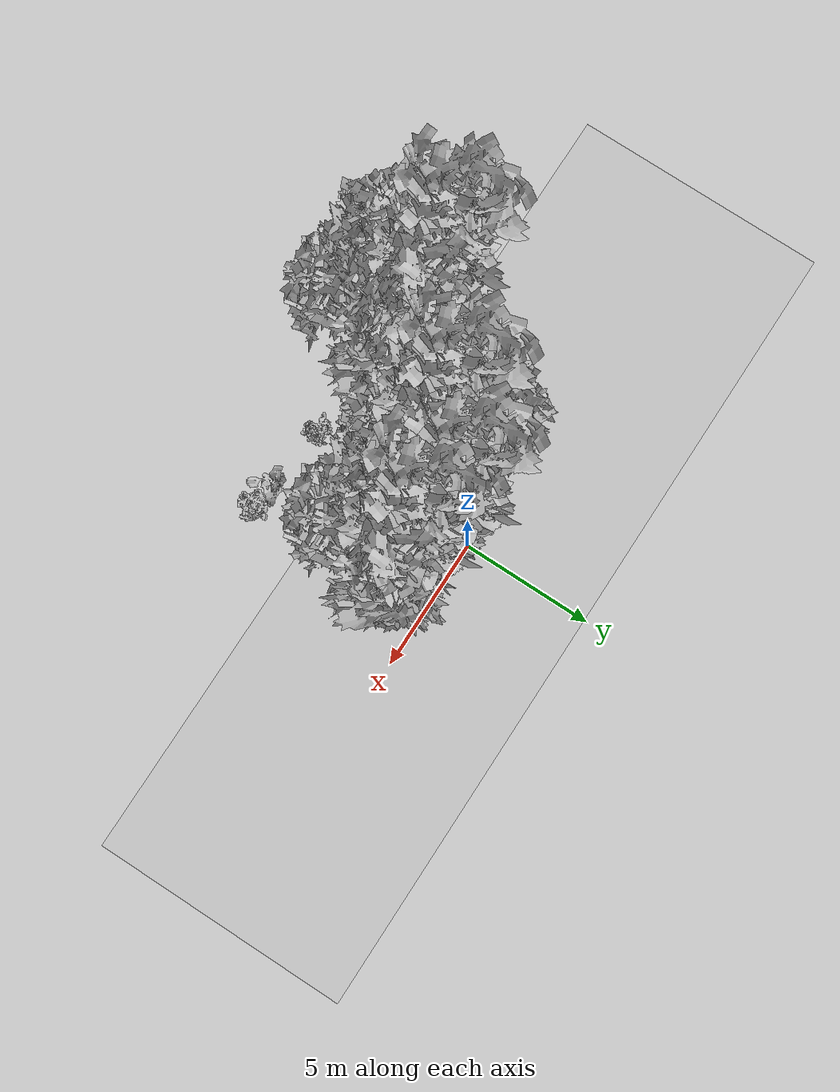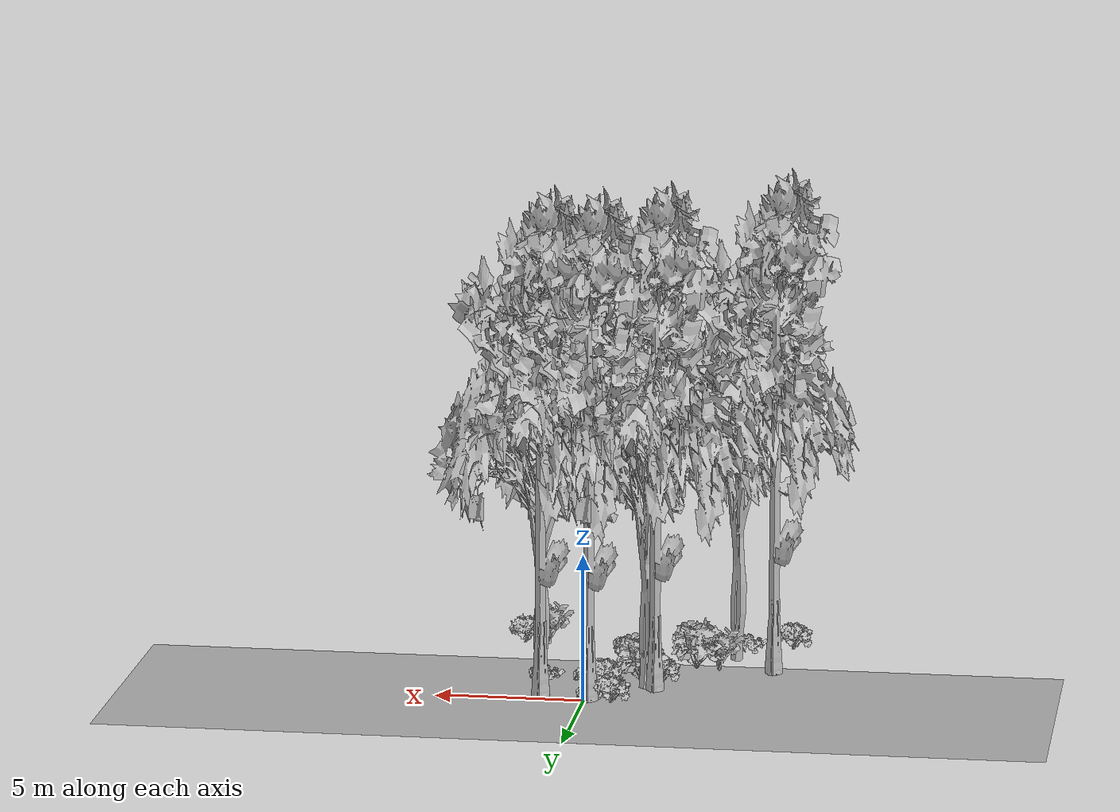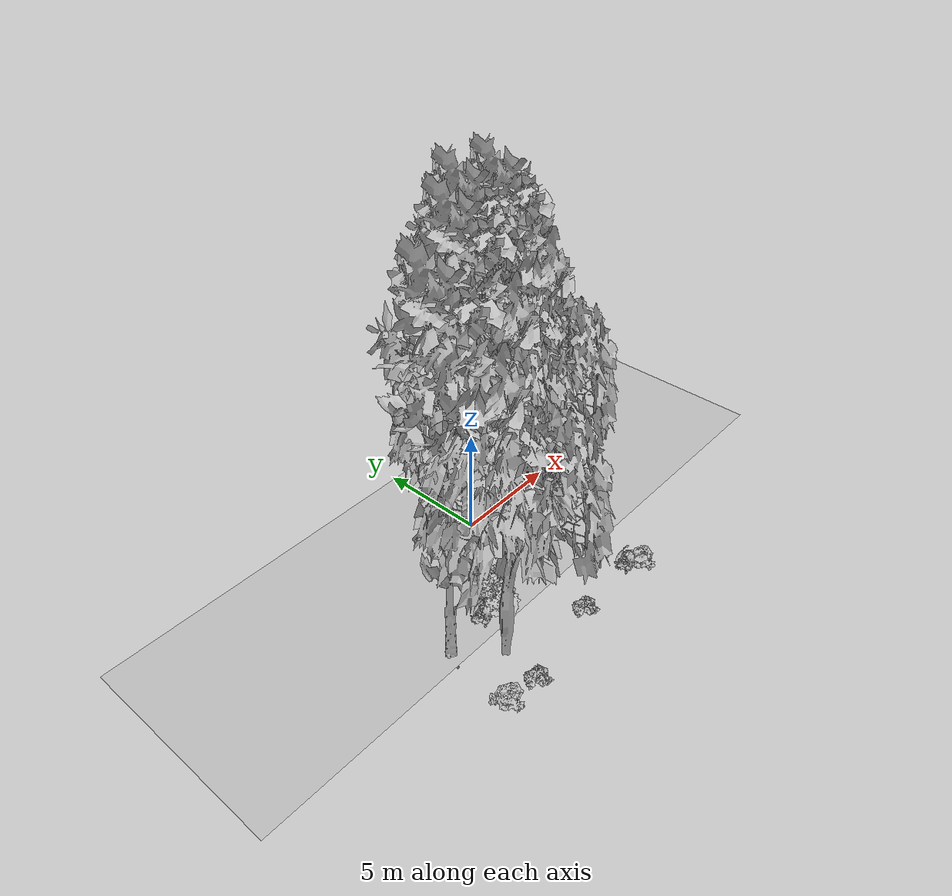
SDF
<sdf version="1.7">
 <world name="default">
  <model name="ground_plane">
   <static>1</static>
   <link name="link">
    <collision name="collision">
     <geometry><plane><normal>0 0 1</normal><size>100 100</size></plane></geometry>
     <surface><contact><ode><min_depth>0.01</min_depth><max_vel>0</max_vel></ode></contact></surface>
    </collision>
    <visual name="grass">
     <cast_shadows>0</cast_shadows>
     <geometry>
      <mesh>
       <scale>0.5814285714285714 0.18142857142857144 0.1</scale>
       <uri>file://grass_plane/meshes/grass_plane.dae</uri>
      </mesh>
     </geometry>
    </visual>
   </link>
  </model>
  <model name="Tree 15">
   <static>1</static>
   <pose>1.6187315218150786 -1.7069448226440347 0 1.57079 -0 0</pose>
   <link name="link">
    <collision name="collision">
     <geometry><mesh><scale>3.5 5 3.5</scale><uri>model://tree_2/meshes/tree_2.obj</uri></mesh></geometry>
    </collision>
    <visual name="visual">
     <geometry><mesh><scale>3.5 5 3.5</scale><uri>model://tree_2/meshes/tree_2.obj</uri></mesh></geometry>
    </visual>
   </link>
  </model>
  <model name="Tree 45">
   <static>1</static>
   <pose>-4.563493109465412 -5.8370666191828136 0 1.57079 -0 0</pose>
   <link name="link">
    <collision name="collision">
     <geometry><mesh><scale>3.5 5 3.5</scale><uri>model://tree_2/meshes/tree_2.obj</uri></mesh></geometry>
    </collision>
    <visual name="visual">
     <geometry><mesh><scale>3.5 5 3.5</scale><uri>model://tree_2/meshes/tree_2.obj</uri></mesh></geometry>
    </visual>
   </link>
  </model>
  <model name="Tree 48">
   <static>1</static>
   <pose>-5.907783599531427 -4.239735757600787 0 1.57079 -0 0</pose>
   <link name="link">
    <collision name="collision">
     <geometry><mesh><scale>3.5 5 3.5</scale><uri>model://tree_9/meshes/tree_9.obj</uri></mesh></geometry>
    </collision>
    <visual name="visual">
     <geometry><mesh><scale>3.5 5 3.5</scale><uri>model://tree_9/meshes/tree_9.obj</uri></mesh></geometry>
    </visual>
   </link>
  </model>
  <model name="Tree 134">
   <static>1</static>
   <pose>1.5072981164294816 -0.38614525174595116 0 1.57079 -0 0</pose>
   <link name="link">
    <collision name="collision">
     <geometry><mesh><scale>3.5 5 3.5</scale><uri>model://tree_9/meshes/tree_9.obj</uri></mesh></geometry>
    </collision>
    <visual name="visual">
     <geometry><mesh><scale>3.5 5 3.5</scale><uri>model://tree_9/meshes/tree_9.obj</uri></mesh></geometry>
    </visual>
   </link>
  </model>
  <model name="Tree 204">
   <static>1</static>
   <pose>-2.1863987542873247 -1.6289337510366586 0 1.57079 -0 0</pose>
   <link name="link">
    <collision name="collision">
     <geometry><mesh><scale>3.5 5 3.5</scale><uri>model://tree_9/meshes/tree_9.obj</uri></mesh></geometry>
    </collision>
    <visual name="visual">
     <geometry><mesh><scale>3.5 5 3.5</scale><uri>model://tree_9/meshes/tree_9.obj</uri></mesh></geometry>
    </visual>
   </link>
  </model>
  <model name="Tree 229">
   <static>1</static>
   <pose>-0.15332690754611633 -0.11897621830365068 0 1.57079 -0 0</pose>
   <link name="link">
    <collision name="collision">
     <geometry><mesh><scale>3.5 5 3.5</scale><uri>model://tree_9/meshes/tree_9.obj</uri></mesh></geometry>
    </collision>
    <visual name="visual">
     <geometry><mesh><scale>3.5 5 3.5</scale><uri>model://tree_9/meshes/tree_9.obj</uri></mesh></geometry>
    </visual>
   </link>
  </model>
  <model name="Tree 298">
   <static>1</static>
   <pose>-1.9194593507286442 -1.9444232137029847 0 1.57079 -0 0</pose>
   <link name="link">
    <collision name="collision">
     <geometry><mesh><scale>3.5 5 3.5</scale><uri>model://tree_2/meshes/tree_2.obj</uri></mesh></geometry>
    </collision>
    <visual name="visual">
     <geometry><mesh><scale>3.5 5 3.5</scale><uri>model://tree_2/meshes/tree_2.obj</uri></mesh></geometry>
    </visual>
   </link>
  </model>
  <model name="Bush 0">
   <static>1</static>
   <pose>0.18535169598162327 -2.7672499117676814 0 1.57079 -0 0</pose>
   <link name="link">
    <collision name="collision">
     <geometry><mesh><scale>2 2 2</scale><uri>model://bush_2/meshes/bush_2.obj</uri></mesh></geometry>
     <surface><contact><collide_without_contact>false</collide_without_contact></contact></surface>
    </collision>
    <visual name="visual">
     <geometry><mesh><scale>2 2 2</scale><uri>model://bush_2/meshes/bush_2.obj</uri></mesh></geometry>
    </visual>
   </link>
  </model>
  <model name="Bush 33">
   <static>1</static>
   <pose>-6.243547281404879 -7.444393270082898 0 1.57079 -0 0</pose>
   <link name="link">
    <collision name="collision">
     <geometry><mesh><scale>2 2 2</scale><uri>model://bush_3/meshes/bush_3.obj</uri></mesh></geometry>
     <surface><contact><collide_without_contact>false</collide_without_contact></contact></surface>
    </collision>
    <visual name="visual">
     <geometry><mesh><scale>2 2 2</scale><uri>model://bush_3/meshes/bush_3.obj</uri></mesh></geometry>
    </visual>
   </link>
  </model>
  <model name="Bush 42">
   <static>1</static>
   <pose>1.7107089151590031 -2.8399154567855174 0 1.57079 -0 0</pose>
   <link name="link">
    <collision name="collision">
     <geometry><mesh><scale>2 2 2</scale><uri>model://bush_2/meshes/bush_2.obj</uri></mesh></geometry>
     <surface><contact><collide_without_contact>false</collide_without_contact></contact></surface>
    </collision>
    <visual name="visual">
     <geometry><mesh><scale>2 2 2</scale><uri>model://bush_2/meshes/bush_2.obj</uri></mesh></geometry>
    </visual>
   </link>
  </model>
  <model name="Bush 79">
   <static>1</static>
   <pose>-3.2532551772452933 -4.553670045237725 0 1.57079 -0 0</pose>
   <link name="link">
    <collision name="collision">
     <geometry><mesh><scale>2 2 2</scale><uri>model://bush_1/meshes/bush_1.obj</uri></mesh></geometry>
     <surface><contact><collide_without_contact>false</collide_without_contact></contact></surface>
    </collision>
    <visual name="visual">
     <geometry><mesh><scale>2 2 2</scale><uri>model://bush_1/meshes/bush_1.obj</uri></mesh></geometry>
    </visual>
   </link>
  </model>
  <model name="Bush 151">
   <static>1</static>
   <pose>-0.6275178115075306 -6.8213301183488575 0 1.57079 -0 0</pose>
   <link name="link">
    <collision name="collision">
     <geometry><mesh><scale>2 2 2</scale><uri>model://bush_2/meshes/bush_2.obj</uri></mesh></geometry>
     <surface><contact><collide_without_contact>false</collide_without_contact></contact></surface>
    </collision>
    <visual name="visual">
     <geometry><mesh><scale>2 2 2</scale><uri>model://bush_2/meshes/bush_2.obj</uri></mesh></geometry>
    </visual>
   </link>
  </model>
  <model name="Bush 175">
   <static>1</static>
   <pose>-4.047742465886785 -4.394703607166878 0 1.57079 -0 0</pose>
   <link name="link">
    <collision name="collision">
     <geometry><mesh><scale>2 2 2</scale><uri>model://bush_0/meshes/bush_0.obj</uri></mesh></geometry>
     <surface><contact><collide_without_contact>false</collide_without_contact></contact></surface>
    </collision>
    <visual name="visual">
     <geometry><mesh><scale>2 2 2</scale><uri>model://bush_0/meshes/bush_0.obj</uri></mesh></geometry>
    </visual>
   </link>
  </model>
  <model name="Bush 188">
   <static>1</static>
   <pose>-2.2565587219357184 -2.5834833547633362 0 1.57079 -0 0</pose>
   <link name="link">
    <collision name="collision">
     <geometry><mesh><scale>2 2 2</scale><uri>model://bush_3/meshes/bush_3.obj</uri></mesh></geometry>
     <surface><contact><collide_without_contact>false</collide_without_contact></contact></surface>
    </collision>
    <visual name="visual">
     <geometry><mesh><scale>2 2 2</scale><uri>model://bush_3/meshes/bush_3.obj</uri></mesh></geometry>
    </visual>
   </link>
  </model>
  <model name="Bush 190">
   <static>1</static>
   <pose>-4.6970581241612095 -7.578710837035248 0 1.57079 -0 0</pose>
   <link name="link">
    <collision name="collision">
     <geometry><mesh><scale>2 2 2</scale><uri>model://bush_2/meshes/bush_2.obj</uri></mesh></geometry>
     <surface><contact><collide_without_contact>false</collide_without_contact></contact></surface>
    </collision>
    <visual name="visual">
     <geometry><mesh><scale>2 2 2</scale><uri>model://bush_2/meshes/bush_2.obj</uri></mesh></geometry>
    </visual>
   </link>
  </model>
  <model name="Bush 212">
   <static>1</static>
   <pose>-0.2127960770913475 -0.6249657789651959 0 1.57079 -0 0</pose>
   <link name="link">
    <collision name="collision">
     <geometry><mesh><scale>2 2 2</scale><uri>model://bush_2/meshes/bush_2.obj</uri></mesh></geometry>
     <surface><contact><collide_without_contact>false</collide_without_contact></contact></surface>
    </collision>
    <visual name="visual">
     <geometry><mesh><scale>2 2 2</scale><uri>model://bush_2/meshes/bush_2.obj</uri></mesh></geometry>
    </visual>
   </link>
  </model>
  <model name="Bush 264">
   <static>1</static>
   <pose>-1.5878147536497806 -2.7338750297336425 0 1.57079 -0 0</pose>
   <link name="link">
    <collision name="collision">
     <geometry><mesh><scale>2 2 2</scale><uri>model://bush_1/meshes/bush_1.obj</uri></mesh></geometry>
     <surface><contact><collide_without_contact>false</collide_without_contact></contact></surface>
    </collision>
    <visual name="visual">
     <geometry><mesh><scale>2 2 2</scale><uri>model://bush_1/meshes/bush_1.obj</uri></mesh></geometry>
    </visual>
   </link>
  </model>
  <model name="Bush 266">
   <static>1</static>
   <pose>2.1761202997260227 -6.922464143598059 0 1.57079 -0 0</pose>
   <link name="link">
    <collision name="collision">
     <geometry><mesh><scale>2 2 2</scale><uri>model://bush_0/meshes/bush_0.obj</uri></mesh></geometry>
     <surface><contact><collide_without_contact>false</collide_without_contact></contact></surface>
    </collision>
    <visual name="visual">
     <geometry><mesh><scale>2 2 2</scale><uri>model://bush_0/meshes/bush_0.obj</uri></mesh></geometry>
    </visual>
   </link>
  </model>
  <model name="Bush 296">
   <static>1</static>
   <pose>-0.41012870463503504 -2.047950269863385 0 1.57079 -0 0</pose>
   <link name="link">
    <collision name="collision">
     <geometry><mesh><scale>2 2 2</scale><uri>model://bush_3/meshes/bush_3.obj</uri></mesh></geometry>
     <surface><contact><collide_without_contact>false</collide_without_contact></contact></surface>
    </collision>
    <visual name="visual">
     <geometry><mesh><scale>2 2 2</scale><uri>model://bush_3/meshes/bush_3.obj</uri></mesh></geometry>
    </visual>
   </link>
  </model>
  <model name="Bush 301">
   <static>1</static>
   <pose>-0.9022268088301786 -0.028581344371293227 0 1.57079 -0 0</pose>
   <link name="link">
    <collision name="collision">
     <geometry><mesh><scale>2 2 2</scale><uri>model://bush_3/meshes/bush_3.obj</uri></mesh></geometry>
     <surface><contact><collide_without_contact>false</collide_without_contact></contact></surface>
    </collision>
    <visual name="visual">
     <geometry><mesh><scale>2 2 2</scale><uri>model://bush_3/meshes/bush_3.obj</uri></mesh></geometry>
    </visual>
   </link>
  </model>
  <model name="Bush 325">
   <static>1</static>
   <pose>3.020643554283332 -7.053039346435246 0 1.57079 -0 0</pose>
   <link name="link">
    <collision name="collision">
     <geometry><mesh><scale>2 2 2</scale><uri>model://bush_3/meshes/bush_3.obj</uri></mesh></geometry>
     <surface><contact><collide_without_contact>false</collide_without_contact></contact></surface>
    </collision>
    <visual name="visual">
     <geometry><mesh><scale>2 2 2</scale><uri>model://bush_3/meshes/bush_3.obj</uri></mesh></geometry>
    </visual>
   </link>
  </model>
 </world>
</sdf>
